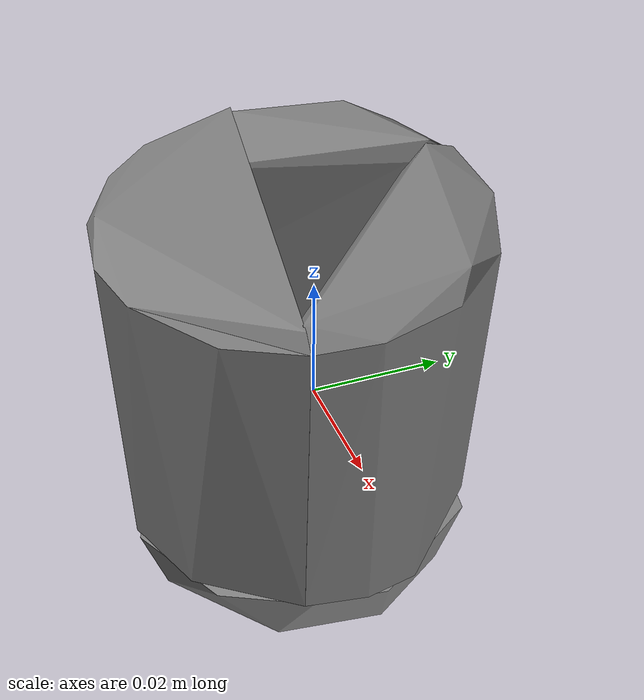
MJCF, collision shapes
<mujoco model="b_cups">
  <compiler angle="radian" />

  <asset>
    <mesh name="b_cups_visual_mesh" file="b_cups/textured.obj" />
    <mesh name="b_cups_collision_mesh_0" file="b_cups/textured_coacd_0.stl" />
    <mesh name="b_cups_collision_mesh_1" file="b_cups/textured_coacd_1.stl" />
    <mesh name="b_cups_collision_mesh_2" file="b_cups/textured_coacd_2.stl" />
    <mesh name="b_cups_collision_mesh_3" file="b_cups/textured_coacd_3.stl" />
    <texture name="b_cups_texture" type="2d" file="b_cups/texture_map.png" />
    <material name="b_cups_material" texture="b_cups_texture" />
  </asset>

  <worldbody>
    <body name="b_cups" pos="0 0 0" euler="0 0 0">
      <freejoint name="b_cups_joint" />
      <geom name="b_cups_visual_geom" type="mesh" mesh="b_cups_visual_mesh" material="b_cups_material" pos="0.026747550267515283 0.05365431597117832 -0.02994142003313046" euler="0 0 0" contype="0" conaffinity="0" group="0" />
      <geom name="b_cups_collision_geom_0" type="mesh" mesh="b_cups_collision_mesh_0" pos="0.026747550267515283 0.05365431597117832 -0.02994142003313046" euler="0 0 0" contype="1" conaffinity="1" group="3" />
      <geom name="b_cups_collision_geom_1" type="mesh" mesh="b_cups_collision_mesh_1" pos="0.026747550267515283 0.05365431597117832 -0.02994142003313046" euler="0 0 0" contype="1" conaffinity="1" group="3" />
      <geom name="b_cups_collision_geom_2" type="mesh" mesh="b_cups_collision_mesh_2" pos="0.026747550267515283 0.05365431597117832 -0.02994142003313046" euler="0 0 0" contype="1" conaffinity="1" group="3" />
      <geom name="b_cups_collision_geom_3" type="mesh" mesh="b_cups_collision_mesh_3" pos="0.026747550267515283 0.05365431597117832 -0.02994142003313046" euler="0 0 0" contype="1" conaffinity="1" group="3" />
      <inertial pos="0 0 0" euler="0 0 0" mass="0.014" diaginertia="0.001 0.001 0.001" />
    </body>
  </worldbody>
</mujoco>
